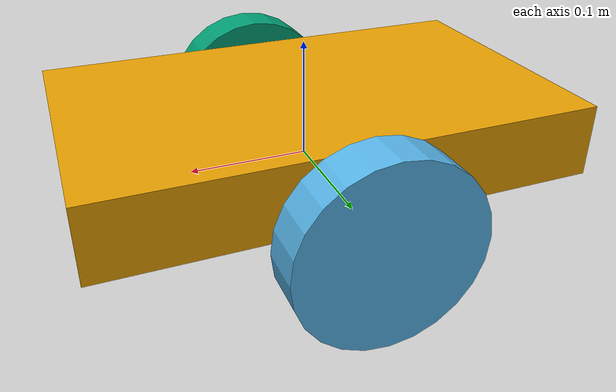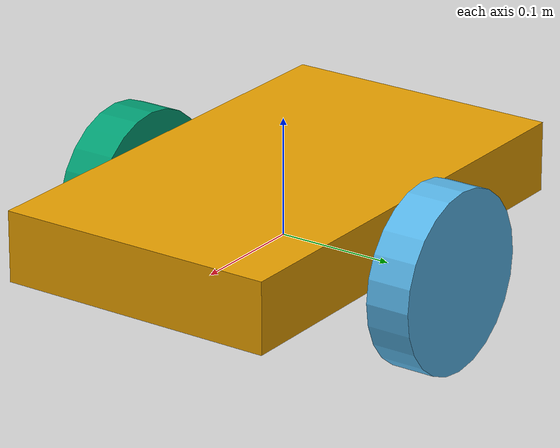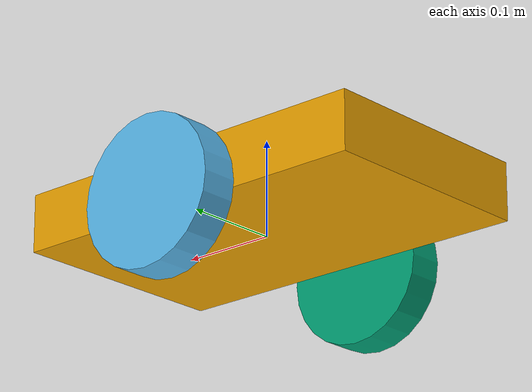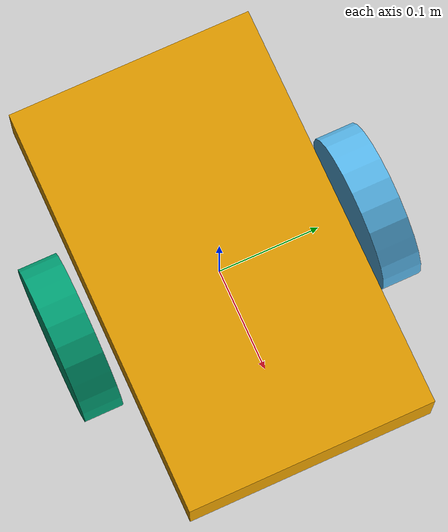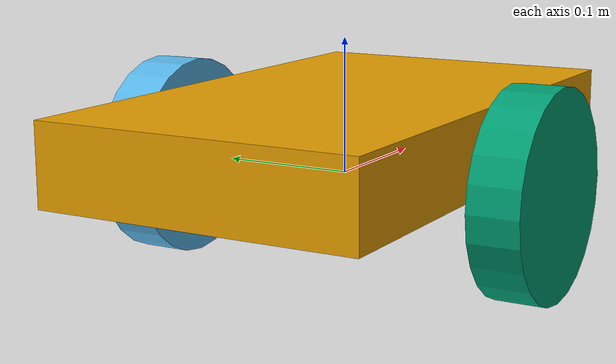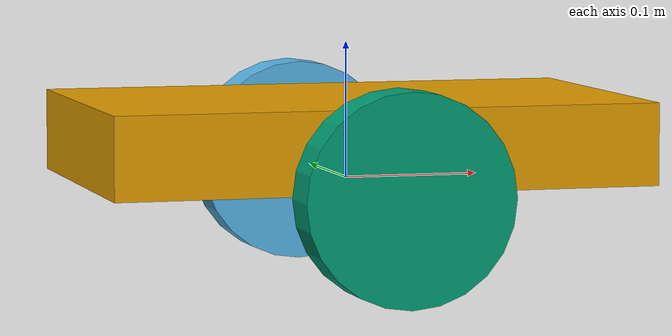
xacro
<?xml version="1.0"?>
<robot name="colebot" xmlns:xacro="http://www.ros.org/wiki/xacro">
  <xacro:arg name="use_mock_hardware" default="false"/>

  <xacro:property name="wheel_radius" value="0.0762"/>     <!-- 6 in HiGrip -->
  <xacro:property name="wheel_width" value="0.038"/>
  <xacro:property name="wheel_separation" value="0.30"/>   <!-- TODO: measure from CAD -->
  <xacro:property name="chassis_length" value="0.40"/>     <!-- TODO: measure from CAD -->
  <xacro:property name="chassis_width" value="0.24"/>      <!-- TODO: measure from CAD -->
  <xacro:property name="chassis_height" value="0.06"/>     <!-- TODO: measure from CAD -->

  <link name="base_link">
    <visual>
      <origin xyz="0 0 ${chassis_height / 2}"/>
      <geometry><box size="${chassis_length} ${chassis_width} ${chassis_height}"/></geometry>
    </visual>
    <collision>
      <origin xyz="0 0 ${chassis_height / 2}"/>
      <geometry><box size="${chassis_length} ${chassis_width} ${chassis_height}"/></geometry>
    </collision>
  </link>

  <xacro:macro name="wheel" params="side y_sign">
    <link name="${side}_wheel_link">
      <visual>
        <origin rpy="${pi / 2} 0 0"/>
        <geometry><cylinder radius="${wheel_radius}" length="${wheel_width}"/></geometry>
      </visual>
      <collision>
        <origin rpy="${pi / 2} 0 0"/>
        <geometry><cylinder radius="${wheel_radius}" length="${wheel_width}"/></geometry>
      </collision>
    </link>
    <joint name="${side}_wheel_joint" type="continuous">
      <parent link="base_link"/>
      <child link="${side}_wheel_link"/>
      <origin xyz="0 ${y_sign * wheel_separation / 2} 0"/>
      <axis xyz="0 1 0"/>
    </joint>
  </xacro:macro>

  <xacro:wheel side="left" y_sign="1"/>
  <xacro:wheel side="right" y_sign="-1"/>

  <xacro:include filename="$(find colebot_description)/urdf/colebot.ros2_control.xacro"/>
  <xacro:colebot_ros2_control use_mock_hardware="$(arg use_mock_hardware)"/>
</robot>
